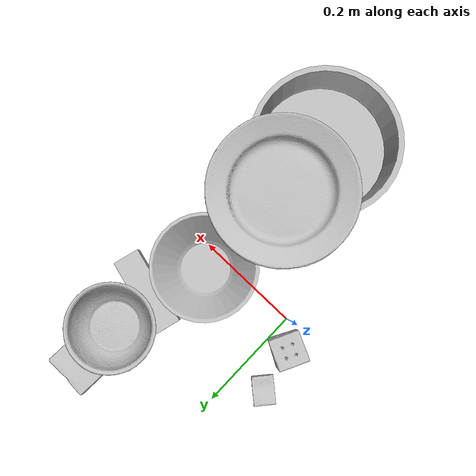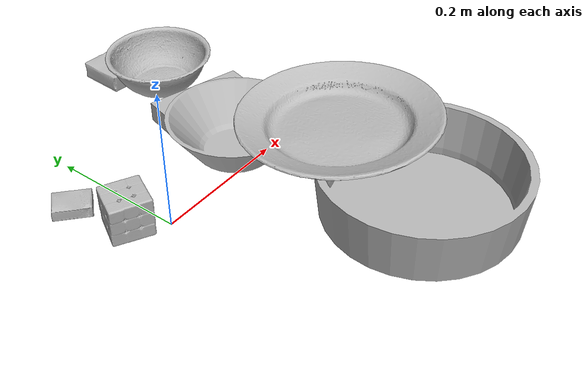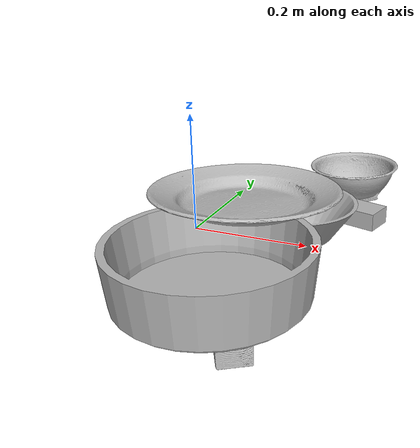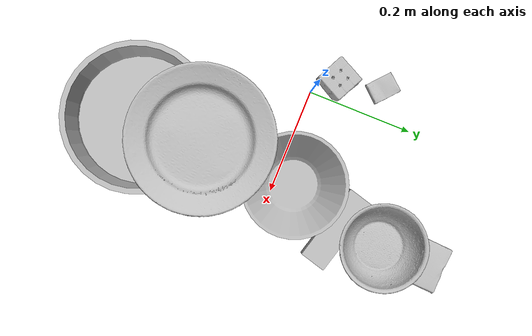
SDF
<sdf version="1.4">
  <world name="default">
    <light name="light1" type="point">
      <pose>0 0 1 0 0 0</pose>
      <diffuse>3 3 3 1</diffuse>
      <specular>3 3 3 1</specular>
    </light>
    <light name="light2" type="point">
      <pose>0 0.5 2 0 0 0</pose>
      <diffuse>1 1 1 1</diffuse>
      <specular>1 1 1 1</specular>
    </light>
    <light name="light3" type="point">
      <pose>0 0.5 2 0 0 0</pose>
      <diffuse>3 3 3 1</diffuse>
      <specular>3 3 3 1</specular>
    </light>
    <scene>
      <ambient>0.7 0.7 0.7</ambient>
    </scene>
    <model name="box1">
      <link name="link_box1">
        <collision name="default">
          <geometry>
            <mesh>
              <uri>model://pudding_box/collision_meshes/collision.obj</uri>
              <scale>0.5 0.5 0.5</scale>
            </mesh>
          </geometry>
          <surface>
            <friction>
              <ode>
                <mu>0.5</mu>
                <mu2>0.5</mu2>
              </ode>
            </friction>
          <contact>
        <ode>
            <max_vel>0</max_vel>
            <min_depth>0.0001</min_depth>
            <kp>1e8</kp>
        </ode>
    </contact></surface>
        </collision>
        <visual name="default">
          <geometry>
            <mesh>
              <uri>model://pudding_box/visual_meshes/visual.dae</uri>
              <scale>0.5 0.5 0.5</scale>
            </mesh>
          </geometry>
        </visual>
        <inertial>
          <mass>0.06043573096394539</mass>
          <pose>0.0002447410661261529 0.00040339428232982755 -0.0002594413817860186 0.005213102238104987 -0.006603800125102895 0.020079827017580043</pose>
          <inertia>
            <ixx>1.707987e-05</ixx>
            <iyy>1.1491458e-05</iyy>
            <izz>2.522289e-05</izz>
            <ixy>0</ixy>
            <ixz>0</ixz>
            <iyz>0</iyz>
          </inertia>
        </inertial>
      </link>
      <pose>0.22762909531593323 0.2417132705450058 0.01002306304872036 0.021013833216141795 0.000891538115294203 -2.2454567046770544</pose>
    </model>
    <model name="box11">
      <link name="link_box11">
        <collision name="default">
          <geometry>
            <mesh>
              <uri>model://wood_block/collision_meshes/collision.obj</uri>
              <scale>0.5 0.5 0.5</scale>
            </mesh>
          </geometry>
          <surface>
            <friction>
              <ode>
                <mu>0.5</mu>
                <mu2>0.5</mu2>
              </ode>
            </friction>
          <contact>
        <ode>
            <max_vel>0</max_vel>
            <min_depth>0.0001</min_depth>
            <kp>1e8</kp>
        </ode>
    </contact></surface>
        </collision>
        <visual name="default">
          <geometry>
            <mesh>
              <uri>model://wood_block/visual_meshes/visual.dae</uri>
              <scale>0.5 0.5 0.5</scale>
            </mesh>
          </geometry>
        </visual>
        <inertial>
          <mass>0.22556793689727783</mass>
          <pose>-2.9066577553749084e-06 -0.000285404734313488 0.00013204290007706732 -0.05220975528916272 -0.005192696013017626 -0.0068613779154948285</pose>
          <inertia>
            <ixx>7.5461e-05</ixx>
            <iyy>0.00023838133</iyy>
            <izz>0.00023748967</izz>
            <ixy>0</ixy>
            <ixz>0</ixz>
            <iyz>0</iyz>
          </inertia>
        </inertial>
      </link>
      <pose>0.20088833570480347 -0.2875286042690277 0.022882428020238876 -0.00012365712995484414 -0.0011570294888331506 -1.022277863933421</pose>
    </model>
    <model name="box2">
      <link name="link_box2">
        <collision name="default">
          <geometry>
            <mesh>
              <uri>model://jenga/collision_meshes/collision.obj</uri>
              <scale>1.0 1.0 1.0</scale>
            </mesh>
          </geometry>
          <surface>
            <friction>
              <ode>
                <mu>0.5</mu>
                <mu2>0.5</mu2>
              </ode>
            </friction>
          <contact>
        <ode>
            <max_vel>0</max_vel>
            <min_depth>0.0001</min_depth>
            <kp>1e8</kp>
        </ode>
    </contact></surface>
        </collision>
        <visual name="default">
          <geometry>
            <mesh>
              <uri>model://jenga/visual_meshes/visual.dae</uri>
              <scale>1.0 1.0 1.0</scale>
            </mesh>
          </geometry>
        </visual>
        <inertial>
          <mass>0.2534179985523224</mass>
          <pose>-2.502856091268768e-07 -0.00010250010382151231 -4.0923401684267446e-05 0.0 -7.342154049184251e-07 0.0</pose>
          <inertia>
            <ixx>7.012692e-05</ixx>
            <iyy>0.00047517804</iyy>
            <izz>0.000507293</izz>
            <ixy>0</ixy>
            <ixz>0</ixz>
            <iyz>0</iyz>
          </inertia>
        </inertial>
      </link>
      <pose>0.21995185315608978 0.1402842104434967 0.0150000536814332 7.3154805702870155e-06 1.7461266836698642e-06 2.8769803749668688</pose>
    </model>
    <model name="box21">
      <link name="link_box21">
        <collision name="default">
          <geometry>
            <mesh>
              <uri>model://cracker_box/collision_meshes/collision.obj</uri>
              <scale>0.25 0.25 0.25</scale>
            </mesh>
          </geometry>
          <surface>
            <friction>
              <ode>
                <mu>0.5</mu>
                <mu2>0.5</mu2>
              </ode>
            </friction>
          <contact>
        <ode>
            <max_vel>0</max_vel>
            <min_depth>0.0001</min_depth>
            <kp>1e8</kp>
        </ode>
    </contact></surface>
        </collision>
        <visual name="default">
          <geometry>
            <mesh>
              <uri>model://cracker_box/visual_meshes/visual.dae</uri>
              <scale>0.25 0.25 0.25</scale>
            </mesh>
          </geometry>
        </visual>
        <inertial>
          <mass>0.04045860841870308</mass>
          <pose>0.0002366030093980953 6.358561950037256e-05 -0.0004257383698131889 -0.0003162076898946344 -0.011106488668808423 0.0025467959335197018</pose>
          <inertia>
            <ixx>6.4317906e-06</ixx>
            <iyy>1.062015e-05</iyy>
            <izz>1.5155927e-05</izz>
            <ixy>0</ixy>
            <ixz>0</ixz>
            <iyz>0</iyz>
          </inertia>
        </inertial>
      </link>
      <pose>-0.05673542991280556 0.1228674128651619 0.009120451286435127 -0.011788141416945922 -0.007367150230688636 2.4246971589066986</pose>
    </model>
    <model name="box3">
      <link name="link_box3">
        <collision name="default">
          <geometry>
            <mesh>
              <uri>model://rubiks_cube/collision_meshes/collision.obj</uri>
              <scale>1.0 1.0 1.0</scale>
            </mesh>
          </geometry>
          <surface>
            <friction>
              <ode>
                <mu>0.5</mu>
                <mu2>0.5</mu2>
              </ode>
            </friction>
          <contact>
        <ode>
            <max_vel>0</max_vel>
            <min_depth>0.0001</min_depth>
            <kp>1e8</kp>
        </ode>
    </contact></surface>
        </collision>
        <visual name="default">
          <geometry>
            <mesh>
              <uri>model://rubiks_cube/visual_meshes/visual.dae</uri>
              <scale>1.0 1.0 1.0</scale>
            </mesh>
          </geometry>
        </visual>
        <inertial>
          <mass>0.12779320776462555</mass>
          <pose>2.6721041649580002e-05 5.2569666877388954e-05 -7.264316082000732e-06 -0.054672129212199855 -0.09814057073985563 -0.03445704008669109</pose>
          <inertia>
            <ixx>7.061434e-05</ixx>
            <iyy>7.0285016e-05</iyy>
            <izz>7.119949e-05</izz>
            <ixy>0</ixy>
            <ixz>0</ixz>
            <iyz>0</iyz>
          </inertia>
        </inertial>
      </link>
      <pose>-0.036756087094545364 0.038994304835796356 0.028678933158516884 -5.206363795756333e-06 -2.314752733501037e-06 -0.4711545727607499</pose>
    </model>
    <model name="box31">
      <link name="link_box31">
        <collision name="default">
          <geometry>
            <mesh>
              <uri>model://gelatin_box/collision_meshes/collision.obj</uri>
              <scale>1.0 1.0 1.0</scale>
            </mesh>
          </geometry>
          <surface>
            <friction>
              <ode>
                <mu>0.5</mu>
                <mu2>0.5</mu2>
              </ode>
            </friction>
          <contact>
        <ode>
            <max_vel>0</max_vel>
            <min_depth>0.0001</min_depth>
            <kp>1e8</kp>
        </ode>
    </contact></surface>
        </collision>
        <visual name="default">
          <geometry>
            <mesh>
              <uri>model://gelatin_box/visual_meshes/visual.dae</uri>
              <scale>1.0 1.0 1.0</scale>
            </mesh>
          </geometry>
        </visual>
        <inertial>
          <mass>0.20050984621047974</mass>
          <pose>0.0004319618456065655 0.00011156872642459348 -0.00036403213744051754 -0.0010503720853528096 -0.004755817758068365 0.016440559471334753</pose>
          <inertia>
            <ixx>0.00014154361</ixx>
            <iyy>0.00010110386</iyy>
            <izz>0.0002154609</izz>
            <ixy>0</ixy>
            <ixz>0</ixz>
            <iyz>0</iyz>
          </inertia>
        </inertial>
      </link>
      <pose>0.21742692589759827 0.314942330121994 0.015168151818215847 0.005601104521187682 -0.007313390662931788 1.5144661723640385</pose>
    </model>
    <model name="plate1">
      <link name="link_plate1">
        <collision name="default">
          <geometry>
            <mesh>
              <uri>model://pan_tefal/collision_meshes/collision.obj</uri>
              <scale>1.0 1.0 1.0</scale>
            </mesh>
          </geometry>
          <surface>
            <friction>
              <ode>
                <mu>0.5</mu>
                <mu2>0.5</mu2>
              </ode>
            </friction>
          <contact>
        <ode>
            <max_vel>0</max_vel>
            <min_depth>0.0001</min_depth>
            <kp>1e8</kp>
        </ode>
    </contact></surface>
        </collision>
        <visual name="default">
          <geometry>
            <mesh>
              <uri>model://pan_tefal/visual_meshes/visual.dae</uri>
              <scale>1.0 1.0 1.0</scale>
            </mesh>
          </geometry>
        </visual>
        <inertial>
          <mass>0.9166961908340454</mass>
          <pose>-0.00018002631259150803 3.279098018538207e-05 -0.00851493515074253 0.0008190256602529888 -0.0003301357182707761 -0.33185348708971</pose>
          <inertia>
            <ixx>0.006327908</ixx>
            <iyy>0.006368705</iyy>
            <izz>0.01164846</izz>
            <ixy>0</ixy>
            <ixz>0</ixz>
            <iyz>0</iyz>
          </inertia>
        </inertial>
      </link>
      <pose>0.16696712374687195 -0.26461154222488403 0.08355125784873962 -0.002345259801882847 0.008050227075161254 1.5092519535589912</pose>
    </model>
    <model name="bowl1">
      <link name="link_bowl1">
        <collision name="default">
          <geometry>
            <mesh>
              <uri>model://bowl_a/collision_meshes/collision.obj</uri>
              <scale>1.0 1.0 1.0</scale>
            </mesh>
          </geometry>
          <surface>
            <friction>
              <ode>
                <mu>0.5</mu>
                <mu2>0.5</mu2>
              </ode>
            </friction>
          <contact>
        <ode>
            <max_vel>0</max_vel>
            <min_depth>0.0001</min_depth>
            <kp>1e8</kp>
        </ode>
    </contact></surface>
        </collision>
        <visual name="default">
          <geometry>
            <mesh>
              <uri>model://bowl_a/visual_meshes/visual.dae</uri>
              <scale>1.0 1.0 1.0</scale>
            </mesh>
          </geometry>
        </visual>
        <inertial>
          <mass>0.44606471061706543</mass>
          <pose>0.0002786746481433511 4.7312179958680645e-05 -0.0013765294570475817 -0.0009805488171165768 -0.0010938123304380014 -0.19122487556540352</pose>
          <inertia>
            <ixx>0.0012699668</ixx>
            <iyy>0.001277764</iyy>
            <izz>0.0022586845</izz>
            <ixy>0</ixy>
            <ixz>0</ixz>
            <iyz>0</iyz>
          </inertia>
        </inertial>
      </link>
      <pose>0.1731375753879547 0.0355268195271492 0.030382830649614334 -1.2558392470508818e-05 7.288549788601015e-06 -0.7667306558925788</pose>
    </model>
    <model name="plate2">
      <link name="link_plate2">
        <collision name="default">
          <geometry>
            <mesh>
              <uri>model://plate/collision_meshes/collision.obj</uri>
              <scale>1.0 1.0 1.0</scale>
            </mesh>
          </geometry>
          <surface>
            <friction>
              <ode>
                <mu>0.5</mu>
                <mu2>0.5</mu2>
              </ode>
            </friction>
          <contact>
        <ode>
            <max_vel>0</max_vel>
            <min_depth>0.0001</min_depth>
            <kp>1e8</kp>
        </ode>
    </contact></surface>
        </collision>
        <visual name="default">
          <geometry>
            <mesh>
              <uri>model://plate/visual_meshes/visual.dae</uri>
              <scale>1.0 1.0 1.0</scale>
            </mesh>
          </geometry>
        </visual>
        <inertial>
          <mass>0.10088177025318146</mass>
          <pose>-0.0006044645560905337 0.0002782582596410066 -0.0010561994276940823 0.002218810424575964 -0.003225458488037908 0.4526011088858205</pose>
          <inertia>
            <ixx>0.00047192685</ixx>
            <iyy>0.00046741302</iyy>
            <izz>0.00092301855</izz>
            <ixy>0</ixy>
            <ixz>0</ixz>
            <iyz>0</iyz>
          </inertia>
        </inertial>
      </link>
      <pose>0.16091807186603546 -0.14643725752830505 0.1338498592376709 -0.012042526058574978 -0.056972790416095064 -1.2345314830100358</pose>
    </model>
    <model name="bowl2">
      <link name="link_bowl2">
        <collision name="default">
          <geometry>
            <mesh>
              <uri>model://bowl/collision_meshes/collision.obj</uri>
              <scale>1.0 1.0 1.0</scale>
            </mesh>
          </geometry>
          <surface>
            <friction>
              <ode>
                <mu>0.5</mu>
                <mu2>0.5</mu2>
              </ode>
            </friction>
          <contact>
        <ode>
            <max_vel>0</max_vel>
            <min_depth>0.0001</min_depth>
            <kp>1e8</kp>
        </ode>
    </contact></surface>
        </collision>
        <visual name="default">
          <geometry>
            <mesh>
              <uri>model://bowl/visual_meshes/visual.dae</uri>
              <scale>1.0 1.0 1.0</scale>
            </mesh>
          </geometry>
        </visual>
        <inertial>
          <mass>0.10570208728313446</mass>
          <pose>0.00020445376867428422 -0.00103021040558815 -0.000804263399913907 -0.015764090239829616 0.014546785988443214 0.7140402180265782</pose>
          <inertia>
            <ixx>0.00024280604</ixx>
            <iyy>0.0002373808</iyy>
            <izz>0.0004084832</izz>
            <ixy>0</ixy>
            <ixz>0</ixz>
            <iyz>0</iyz>
          </inertia>
        </inertial>
      </link>
      <pose>0.21821071207523346 0.22483809292316437 0.04630540311336517 0.019695695761137607 0.017985094175031902 -2.637987117243096</pose>
    </model>
  <physics type="ode">
      <max_contacts>50</max_contacts>
      <ode>
        <solver>
          <type>quick</type>
          <iters>75</iters>
        </solver>
        <constraints>
          <contact_max_correcting_vel>0</contact_max_correcting_vel>
          <contact_surface_layer>0</contact_surface_layer>
        </constraints>
      </ode>
    </physics></world>
</sdf>
